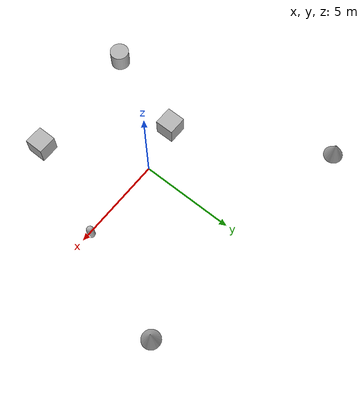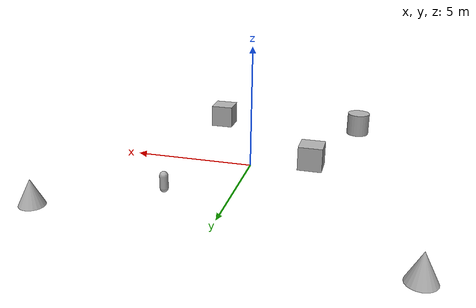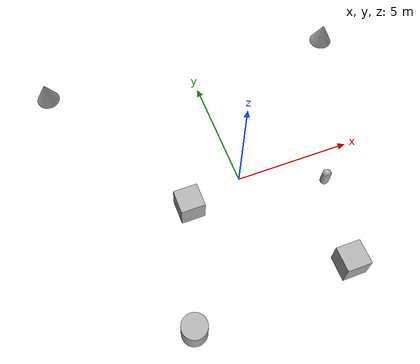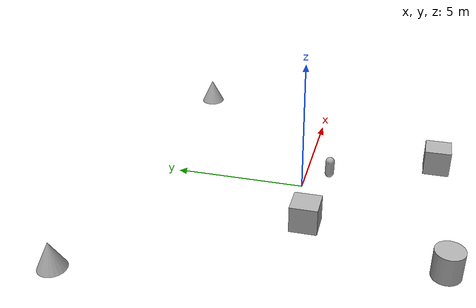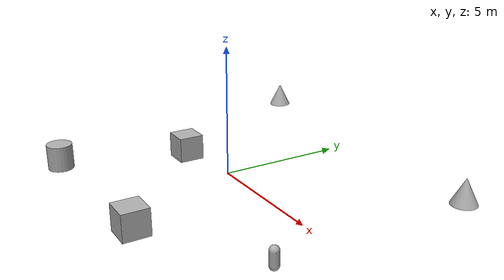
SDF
<sdf version="1.10">
 <world name="map">
  <physics name="1ms" type="ignore">
   <max_step_size>0.001</max_step_size>
   <real_time_factor>1</real_time_factor>
   <real_time_update_rate>1000</real_time_update_rate>
  </physics>
  <plugin name="gz::sim::systems::Physics" filename="gz-sim-physics-system"/>
  <plugin name="gz::sim::systems::Sensors" filename="gz-sim-sensors-system">
   <render_engine>ogre2</render_engine>
  </plugin>
  <plugin name="gz::sim::systems::UserCommands" filename="gz-sim-user-commands-system"/>
  <plugin name="gz::sim::systems::SceneBroadcaster" filename="gz-sim-scene-broadcaster-system"/>
  <plugin name="gz::sim::systems::AirPressure" filename="gz-sim-air-pressure-system"/>
  <plugin name="gz::sim::systems::AirSpeed" filename="gz-sim-air-speed-system"/>
  <plugin name="gz::sim::systems::Altimeter" filename="gz-sim-altimeter-system"/>
  <plugin name="gz::sim::systems::Imu" filename="gz-sim-imu-system"/>
  <plugin name="gz::sim::systems::Magnetometer" filename="gz-sim-magnetometer-system"/>
  <plugin name="gz::sim::systems::NavSat" filename="gz-sim-navsat-system"/>
  <scene>
   <ambient>1 1 1 1</ambient>
   <background>0.800000012 0.800000012 0.800000012 1</background>
   <shadows>true</shadows>
  </scene>
  <spherical_coordinates>
   <latitude_deg>-35.3632621</latitude_deg>
   <longitude_deg>149.1652374</longitude_deg>
   <elevation>10</elevation>
   <heading_deg>0</heading_deg>
   <surface_model>EARTH_WGS84</surface_model>
  </spherical_coordinates>
  <gravity>0 0 -9.8000000000000007</gravity>
  <magnetic_field>5.5644999999999998e-06 2.2875799999999999e-05 -4.2388400000000002e-05</magnetic_field>
  <atmosphere type="adiabatic"/>
  <model name="cylinder">
   <pose>-3.9885911737356725 -5.3785343595431936 0.49999943772199973 1.9085771681885186e-19 -1.9967046418580337e-19 3.2043367942799914e-20</pose>
   <link name="cylinder_link">
    <inertial>
     <inertia>
      <ixx>0.14580000000000001</ixx>
      <ixy>0</ixy>
      <ixz>0</ixz>
      <iyy>0.14580000000000001</iyy>
      <iyz>0</iyz>
      <izz>0.125</izz>
     </inertia>
     <mass>1</mass>
    </inertial>
    <collision name="cylinder_collision">
     <geometry><cylinder><radius>0.5</radius><length>1</length></cylinder></geometry>
    </collision>
    <visual name="cylinder_visual">
     <geometry><cylinder><radius>0.5</radius><length>1</length></cylinder></geometry>
     <material>
      <ambient>0.300000012 0.300000012 0.300000012 1</ambient>
      <diffuse>0.699999988 0.699999988 0.699999988 1</diffuse>
      <specular>1 1 1 1</specular>
     </material>
    </visual>
   </link>
   <static>false</static>
  </model>
  <model name="capsule">
   <pose>4.1262340441815768 -0.52609676957974449 -1.4996657764571113 0.020233938029834433 0.01292836165757316 -0.030504686083498964</pose>
   <link name="capsule_link">
    <inertial>
     <inertia>
      <ixx>0.074153999999999998</ixx>
      <ixy>0</ixy>
      <ixz>0</ixz>
      <iyy>0.074153999999999998</iyy>
      <iyz>0</iyz>
      <izz>0.018769000000000001</izz>
     </inertia>
     <mass>1</mass>
    </inertial>
    <collision name="capsule_collision">
     <geometry>
      <capsule><radius>0.20000000000000001</radius><length>0.59999999999999998</length></capsule>
     </geometry>
    </collision>
    <visual name="capsule_visual">
     <geometry>
      <capsule><radius>0.20000000000000001</radius><length>0.59999999999999998</length></capsule>
     </geometry>
     <material>
      <ambient>0.300000012 0.300000012 0.300000012 1</ambient>
      <diffuse>0.699999988 0.699999988 0.699999988 1</diffuse>
      <specular>1 1 1 1</specular>
     </material>
    </visual>
   </link>
   <static>false</static>
  </model>
  <model name="box">
   <pose>-2.4334006415366884 -0.57690769252313068 0.499999426313885 6.4362839064865997e-19 1.9049486553279408e-19 1.0978194562074784e-20</pose>
   <link name="box_link">
    <inertial>
     <inertia><ixx>0.16666</ixx><ixy>0</ixy><ixz>0</ixz><iyy>0.16666</iyy><iyz>0</iyz><izz>0.16666</izz></inertia>
     <mass>1</mass>
    </inertial>
    <collision name="box_collision"><geometry><box><size>1 1 1</size></box></geometry></collision>
    <visual name="box_visual">
     <geometry><box><size>1 1 1</size></box></geometry>
     <material>
      <ambient>0.300000012 0.300000012 0.300000012 1</ambient>
      <diffuse>0.699999988 0.699999988 0.699999988 1</diffuse>
      <specular>1 1 1 1</specular>
     </material>
    </visual>
   </link>
   <static>false</static>
  </model>
  <model name="box_0">
   <pose>2.5498393705647135 -4.991731171439306 0.499999426313885 2.9459022144247468e-19 -5.5748641487827801e-19 3.9451916437218222e-22</pose>
   <link name="box_link">
    <inertial>
     <inertia><ixx>0.16666</ixx><ixy>0</ixy><ixz>0</ixz><iyy>0.16666</iyy><iyz>0</iyz><izz>0.16666</izz></inertia>
     <mass>1</mass>
    </inertial>
    <collision name="box_collision"><geometry><box><size>1 1 1</size></box></geometry></collision>
    <visual name="box_visual">
     <geometry><box><size>1 1 1</size></box></geometry>
     <material>
      <ambient>0.300000012 0.300000012 0.300000012 1</ambient>
      <diffuse>0.699999988 0.699999988 0.699999988 1</diffuse>
      <specular>1 1 1 1</specular>
     </material>
    </visual>
   </link>
   <static>false</static>
  </model>
  <model name="cone">
   <pose>6.6593893037796628 5.7449204111061221 0.49999999993296756 5.254703733353654e-17 -7.7132841036396134e-10 3.9991114848872222e-23</pose>
   <link name="cone_link">
    <inertial>
     <inertia>
      <ixx>0.074999999999999997</ixx>
      <ixy>0</ixy>
      <ixz>0</ixz>
      <iyy>0.074999999999999997</iyy>
      <iyz>0</iyz>
      <izz>0.074999999999999997</izz>
     </inertia>
     <mass>1</mass>
    </inertial>
    <collision name="cone_collision">
     <geometry><cone><radius>0.5</radius><length>1</length></cone></geometry>
    </collision>
    <visual name="cone_visual">
     <geometry><cone><radius>0.5</radius><length>1</length></cone></geometry>
     <material>
      <ambient>0.300000012 0.300000012 0.300000012 1</ambient>
      <diffuse>0.699999988 0.699999988 0.699999988 1</diffuse>
      <specular>1 1 1 1</specular>
     </material>
    </visual>
   </link>
   <static>false</static>
  </model>
  <model name="cone_0">
   <pose>-6.5799616906738994 6.8718700979027147 0.49999999993296756 5.2537575930865937e-17 -7.7132841035986907e-10 -6.8569756087491181e-23</pose>
   <link name="cone_link">
    <inertial>
     <inertia>
      <ixx>0.074999999999999997</ixx>
      <ixy>0</ixy>
      <ixz>0</ixz>
      <iyy>0.074999999999999997</iyy>
      <iyz>0</iyz>
      <izz>0.074999999999999997</izz>
     </inertia>
     <mass>1</mass>
    </inertial>
    <collision name="cone_collision">
     <geometry><cone><radius>0.5</radius><length>1</length></cone></geometry>
    </collision>
    <visual name="cone_visual">
     <geometry><cone><radius>0.5</radius><length>1</length></cone></geometry>
     <material>
      <ambient>0.300000012 0.300000012 0.300000012 1</ambient>
      <diffuse>0.699999988 0.699999988 0.699999988 1</diffuse>
      <specular>1 1 1 1</specular>
     </material>
    </visual>
   </link>
   <static>false</static>
  </model>
  <light name="sun" type="directional">
   <pose>0 0 10 0 0 0</pose>
   <intensity>1</intensity>
   <direction>-0.5 0.10000000000000001 -0.90000000000000002</direction>
   <diffuse>0.800000012 0.800000012 0.800000012 1</diffuse>
   <specular>0.800000012 0.800000012 0.800000012 1</specular>
   <attenuation>
    <range>1000</range>
    <linear>0.01</linear>
    <constant>0.90000000000000002</constant>
    <quadratic>0.001</quadratic>
   </attenuation>
   <spot><inner_angle>0</inner_angle><outer_angle>0</outer_angle><falloff>0</falloff></spot>
  </light>
 </world>
</sdf>
